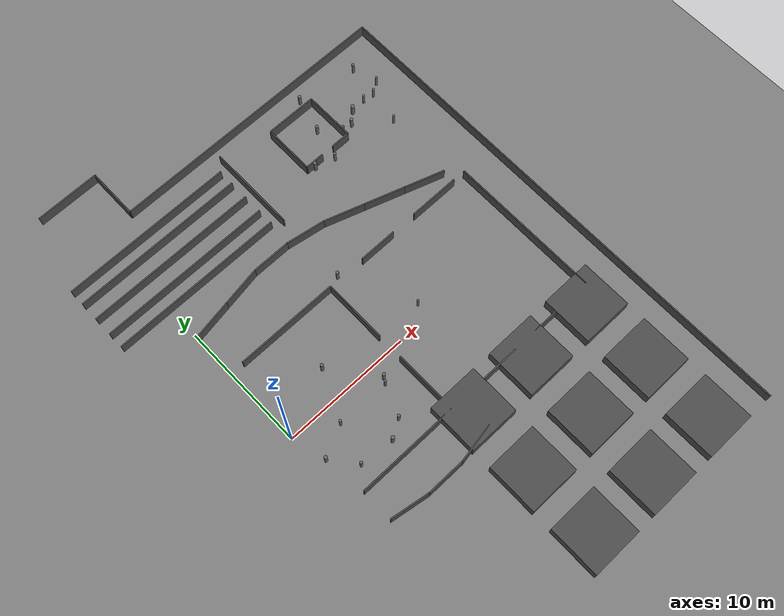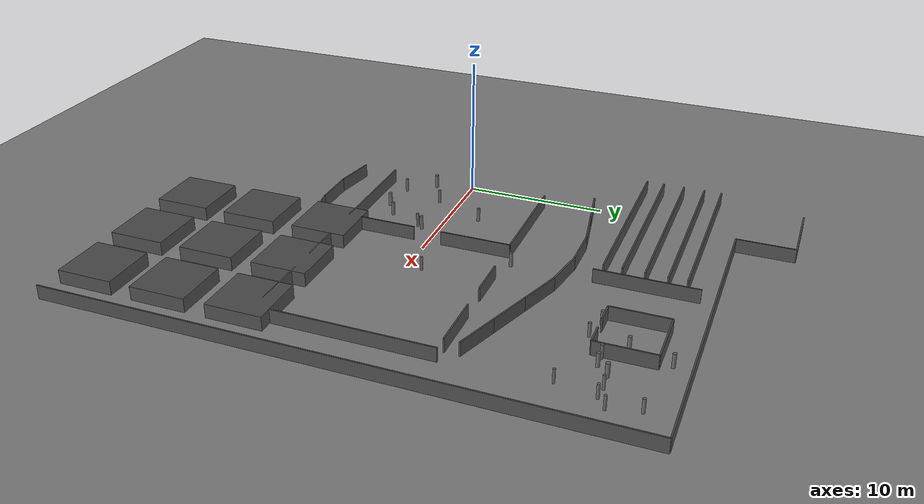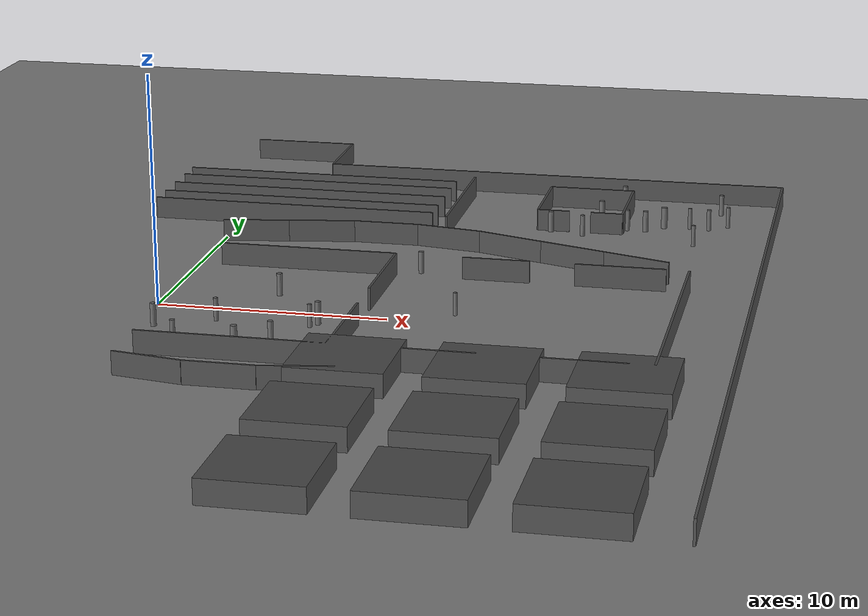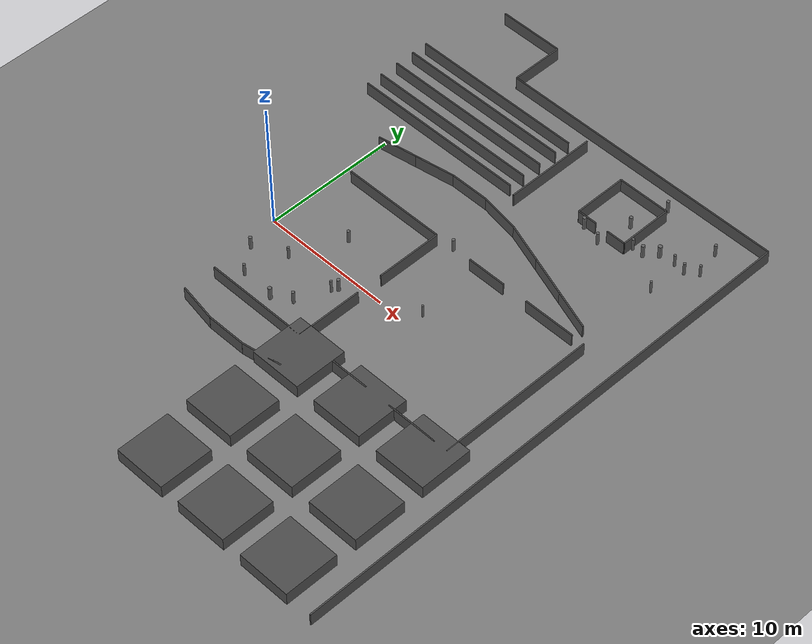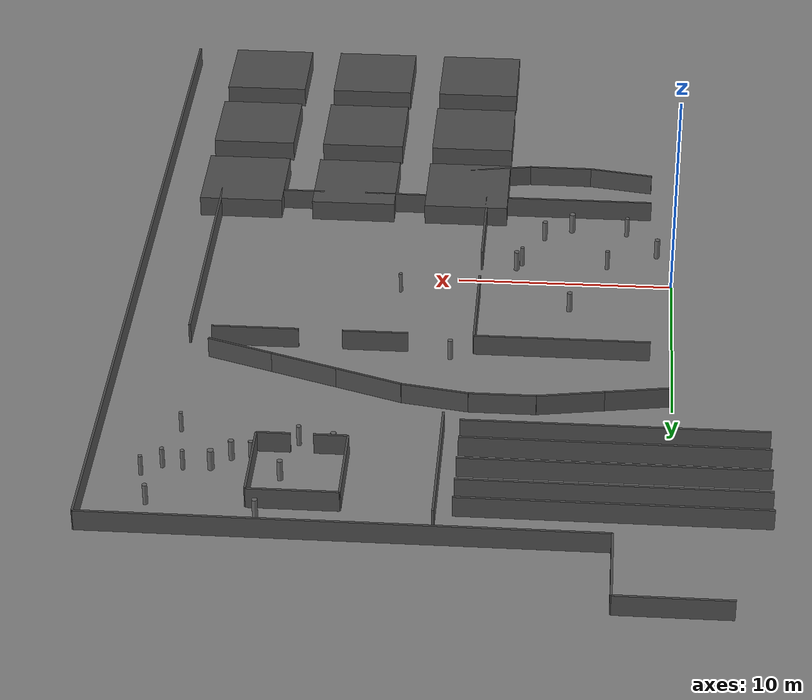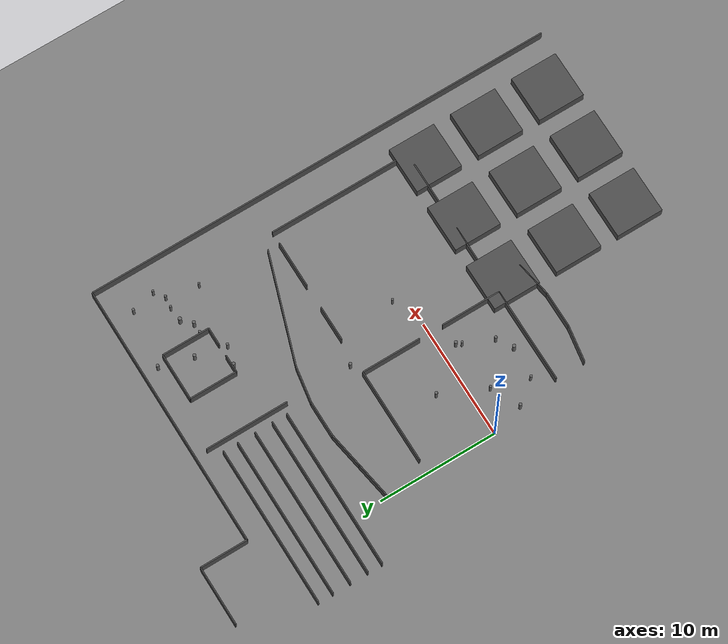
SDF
<sdf version="1.9">
 <world name="maze_large">
  <model name="ground">
   <static>true</static>
   <link name="link">
    <collision name="collision">
     <geometry><plane><normal>0 0 1</normal><size>75 60</size></plane></geometry>
    </collision>
    <visual name="visual">
     <geometry><plane><normal>0 0 1</normal><size>75 60</size></plane></geometry>
     <material><ambient>0.5 0.5 0.5 1</ambient><diffuse>0.5 0.5 0.5 1</diffuse></material>
    </visual>
   </link>
  </model>
  <model name="border_top_r">
   <static>true</static>
   <pose>13.75 20.0 0.5 0 0 0.0</pose>
   <link name="wall">
    <collision name="collision"><geometry><box><size>22.5 0.1 1.0</size></box></geometry></collision>
    <visual name="visual">
     <geometry><box><size>22.5 0.1 1.0</size></box></geometry>
     <material><ambient>0.3 0.3 0.3 1</ambient><diffuse>0.3 0.3 0.3 1</diffuse></material>
    </visual>
   </link>
  </model>
  <model name="border_right">
   <static>true</static>
   <pose>25.0 0.0 0.5 0 0 0.0</pose>
   <link name="wall">
    <collision name="collision"><geometry><box><size>0.1 40.0 1.0</size></box></geometry></collision>
    <visual name="visual">
     <geometry><box><size>0.1 40.0 1.0</size></box></geometry>
     <material><ambient>0.3 0.3 0.3 1</ambient><diffuse>0.3 0.3 0.3 1</diffuse></material>
    </visual>
   </link>
  </model>
  <model name="alcove_right">
   <static>true</static>
   <pose>2.5 22.0 0.5 0 0 0.0</pose>
   <link name="wall">
    <collision name="collision"><geometry><box><size>0.1 4.0 1.0</size></box></geometry></collision>
    <visual name="visual">
     <geometry><box><size>0.1 4.0 1.0</size></box></geometry>
     <material><ambient>0.3 0.3 0.3 1</ambient><diffuse>0.3 0.3 0.3 1</diffuse></material>
    </visual>
   </link>
  </model>
  <model name="alcove_back">
   <static>true</static>
   <pose>0.0 24.0 0.5 0 0 0.0</pose>
   <link name="wall">
    <collision name="collision"><geometry><box><size>5.0 0.1 1.0</size></box></geometry></collision>
    <visual name="visual">
     <geometry><box><size>5.0 0.1 1.0</size></box></geometry>
     <material><ambient>0.3 0.3 0.3 1</ambient><diffuse>0.3 0.3 0.3 1</diffuse></material>
    </visual>
   </link>
  </model>
  <model name="plaza_top_r">
   <static>true</static>
   <pose>5.0 6.0 0.5 0 0 0.0</pose>
   <link name="wall">
    <collision name="collision"><geometry><box><size>8.0 0.1 1.0</size></box></geometry></collision>
    <visual name="visual">
     <geometry><box><size>8.0 0.1 1.0</size></box></geometry>
     <material><ambient>0.3 0.3 0.3 1</ambient><diffuse>0.3 0.3 0.3 1</diffuse></material>
    </visual>
   </link>
  </model>
  <model name="plaza_bot_r">
   <static>true</static>
   <pose>5.0 -6.0 0.5 0 0 0.0</pose>
   <link name="wall">
    <collision name="collision"><geometry><box><size>8.0 0.1 1.0</size></box></geometry></collision>
    <visual name="visual">
     <geometry><box><size>8.0 0.1 1.0</size></box></geometry>
     <material><ambient>0.3 0.3 0.3 1</ambient><diffuse>0.3 0.3 0.3 1</diffuse></material>
    </visual>
   </link>
  </model>
  <model name="plaza_right_t">
   <static>true</static>
   <pose>9.0 3.5 0.5 0 0 0.0</pose>
   <link name="wall">
    <collision name="collision"><geometry><box><size>0.1 5.0 1.0</size></box></geometry></collision>
    <visual name="visual">
     <geometry><box><size>0.1 5.0 1.0</size></box></geometry>
     <material><ambient>0.3 0.3 0.3 1</ambient><diffuse>0.3 0.3 0.3 1</diffuse></material>
    </visual>
   </link>
  </model>
  <model name="plaza_right_b">
   <static>true</static>
   <pose>9.0 -3.5 0.5 0 0 0.0</pose>
   <link name="wall">
    <collision name="collision"><geometry><box><size>0.1 5.0 1.0</size></box></geometry></collision>
    <visual name="visual">
     <geometry><box><size>0.1 5.0 1.0</size></box></geometry>
     <material><ambient>0.3 0.3 0.3 1</ambient><diffuse>0.3 0.3 0.3 1</diffuse></material>
    </visual>
   </link>
  </model>
  <model name="plaza_p_0">
   <static>true</static>
   <pose>2.15 -4.5 0.5 0 0 0</pose>
   <link name="p">
    <collision name="c">
     <geometry><cylinder><radius>0.105</radius><length>1.0</length></cylinder></geometry>
    </collision>
    <visual name="v">
     <geometry><cylinder><radius>0.105</radius><length>1.0</length></cylinder></geometry>
     <material><ambient>0.4 0.4 0.4 1</ambient><diffuse>0.4 0.4 0.4 1</diffuse></material>
    </visual>
   </link>
  </model>
  <model name="plaza_p_2">
   <static>true</static>
   <pose>6.1 -3.9 0.5 0 0 0</pose>
   <link name="p">
    <collision name="c">
     <geometry><cylinder><radius>0.115</radius><length>1.0</length></cylinder></geometry>
    </collision>
    <visual name="v">
     <geometry><cylinder><radius>0.115</radius><length>1.0</length></cylinder></geometry>
     <material><ambient>0.4 0.4 0.4 1</ambient><diffuse>0.4 0.4 0.4 1</diffuse></material>
    </visual>
   </link>
  </model>
  <model name="plaza_p_5">
   <static>true</static>
   <pose>0.7 -2.65 0.5 0 0 0</pose>
   <link name="p">
    <collision name="c">
     <geometry><cylinder><radius>0.125</radius><length>1.0</length></cylinder></geometry>
    </collision>
    <visual name="v">
     <geometry><cylinder><radius>0.125</radius><length>1.0</length></cylinder></geometry>
     <material><ambient>0.4 0.4 0.4 1</ambient><diffuse>0.4 0.4 0.4 1</diffuse></material>
    </visual>
   </link>
  </model>
  <model name="plaza_p_6">
   <static>true</static>
   <pose>4.8 -4.7 0.5 0 0 0</pose>
   <link name="p">
    <collision name="c">
     <geometry><cylinder><radius>0.1375</radius><length>1.0</length></cylinder></geometry>
    </collision>
    <visual name="v">
     <geometry><cylinder><radius>0.1375</radius><length>1.0</length></cylinder></geometry>
     <material><ambient>0.4 0.4 0.4 1</ambient><diffuse>0.4 0.4 0.4 1</diffuse></material>
    </visual>
   </link>
  </model>
  <model name="plaza_p_7">
   <static>true</static>
   <pose>3.05 -1.5 0.5 0 0 0</pose>
   <link name="p">
    <collision name="c">
     <geometry><cylinder><radius>0.0975</radius><length>1.0</length></cylinder></geometry>
    </collision>
    <visual name="v">
     <geometry><cylinder><radius>0.0975</radius><length>1.0</length></cylinder></geometry>
     <material><ambient>0.4 0.4 0.4 1</ambient><diffuse>0.4 0.4 0.4 1</diffuse></material>
    </visual>
   </link>
  </model>
  <model name="plaza_p_8">
   <static>true</static>
   <pose>7.1 -1.55 0.5 0 0 0</pose>
   <link name="p">
    <collision name="c">
     <geometry><cylinder><radius>0.0925</radius><length>1.0</length></cylinder></geometry>
    </collision>
    <visual name="v">
     <geometry><cylinder><radius>0.0925</radius><length>1.0</length></cylinder></geometry>
     <material><ambient>0.4 0.4 0.4 1</ambient><diffuse>0.4 0.4 0.4 1</diffuse></material>
    </visual>
   </link>
  </model>
  <model name="plaza_p_10">
   <static>true</static>
   <pose>4.75 2.2 0.5 0 0 0</pose>
   <link name="p">
    <collision name="c">
     <geometry><cylinder><radius>0.12</radius><length>1.0</length></cylinder></geometry>
    </collision>
    <visual name="v">
     <geometry><cylinder><radius>0.12</radius><length>1.0</length></cylinder></geometry>
     <material><ambient>0.4 0.4 0.4 1</ambient><diffuse>0.4 0.4 0.4 1</diffuse></material>
    </visual>
   </link>
  </model>
  <model name="plaza_p_11">
   <static>true</static>
   <pose>7.35 -1.15 0.5 0 0 0</pose>
   <link name="p">
    <collision name="c">
     <geometry><cylinder><radius>0.1225</radius><length>1.0</length></cylinder></geometry>
    </collision>
    <visual name="v">
     <geometry><cylinder><radius>0.1225</radius><length>1.0</length></cylinder></geometry>
     <material><ambient>0.4 0.4 0.4 1</ambient><diffuse>0.4 0.4 0.4 1</diffuse></material>
    </visual>
   </link>
  </model>
  <model name="corr_r_out">
   <static>true</static>
   <pose>22.0 0.0 0.5 0 0 0.0</pose>
   <link name="wall">
    <collision name="collision"><geometry><box><size>0.1 12.0 1.0</size></box></geometry></collision>
    <visual name="visual">
     <geometry><box><size>0.1 12.0 1.0</size></box></geometry>
     <material><ambient>0.3 0.3 0.3 1</ambient><diffuse>0.3 0.3 0.3 1</diffuse></material>
    </visual>
   </link>
  </model>
  <model name="corr_r_top_l">
   <static>true</static>
   <pose>13.5 6.0 0.5 0 0 0.0</pose>
   <link name="wall">
    <collision name="collision"><geometry><box><size>3.0 0.1 1.0</size></box></geometry></collision>
    <visual name="visual">
     <geometry><box><size>3.0 0.1 1.0</size></box></geometry>
     <material><ambient>0.3 0.3 0.3 1</ambient><diffuse>0.3 0.3 0.3 1</diffuse></material>
    </visual>
   </link>
  </model>
  <model name="corr_r_top_r">
   <static>true</static>
   <pose>19.0 6.0 0.5 0 0 0.0</pose>
   <link name="wall">
    <collision name="collision"><geometry><box><size>4.0 0.1 1.0</size></box></geometry></collision>
    <visual name="visual">
     <geometry><box><size>4.0 0.1 1.0</size></box></geometry>
     <material><ambient>0.3 0.3 0.3 1</ambient><diffuse>0.3 0.3 0.3 1</diffuse></material>
    </visual>
   </link>
  </model>
  <model name="corr_r_bot_l">
   <static>true</static>
   <pose>13.5 -6.0 0.5 0 0 0.0</pose>
   <link name="wall">
    <collision name="collision"><geometry><box><size>3.0 0.1 1.0</size></box></geometry></collision>
    <visual name="visual">
     <geometry><box><size>3.0 0.1 1.0</size></box></geometry>
     <material><ambient>0.3 0.3 0.3 1</ambient><diffuse>0.3 0.3 0.3 1</diffuse></material>
    </visual>
   </link>
  </model>
  <model name="corr_r_bot_r">
   <static>true</static>
   <pose>19.0 -6.0 0.5 0 0 0.0</pose>
   <link name="wall">
    <collision name="collision"><geometry><box><size>4.0 0.1 1.0</size></box></geometry></collision>
    <visual name="visual">
     <geometry><box><size>4.0 0.1 1.0</size></box></geometry>
     <material><ambient>0.3 0.3 0.3 1</ambient><diffuse>0.3 0.3 0.3 1</diffuse></material>
    </visual>
   </link>
  </model>
  <model name="pf_right_0">
   <static>true</static>
   <pose>16.2 13.45 0.5 0 0 0</pose>
   <link name="p">
    <collision name="c">
     <geometry><cylinder><radius>0.1075</radius><length>1.0</length></cylinder></geometry>
    </collision>
    <visual name="v">
     <geometry><cylinder><radius>0.1075</radius><length>1.0</length></cylinder></geometry>
     <material><ambient>0.4 0.4 0.4 1</ambient><diffuse>0.4 0.4 0.4 1</diffuse></material>
    </visual>
   </link>
  </model>
  <model name="pf_right_1">
   <static>true</static>
   <pose>22.25 18.05 0.5 0 0 0</pose>
   <link name="p">
    <collision name="c">
     <geometry><cylinder><radius>0.1075</radius><length>1.0</length></cylinder></geometry>
    </collision>
    <visual name="v">
     <geometry><cylinder><radius>0.1075</radius><length>1.0</length></cylinder></geometry>
     <material><ambient>0.4 0.4 0.4 1</ambient><diffuse>0.4 0.4 0.4 1</diffuse></material>
    </visual>
   </link>
  </model>
  <model name="pf_right_2">
   <static>true</static>
   <pose>19.8 15.45 0.5 0 0 0</pose>
   <link name="p">
    <collision name="c">
     <geometry><cylinder><radius>0.145</radius><length>1.0</length></cylinder></geometry>
    </collision>
    <visual name="v">
     <geometry><cylinder><radius>0.145</radius><length>1.0</length></cylinder></geometry>
     <material><ambient>0.4 0.4 0.4 1</ambient><diffuse>0.4 0.4 0.4 1</diffuse></material>
    </visual>
   </link>
  </model>
  <model name="pf_right_3">
   <static>true</static>
   <pose>18.15 14.7 0.5 0 0 0</pose>
   <link name="p">
    <collision name="c">
     <geometry><cylinder><radius>0.1025</radius><length>1.0</length></cylinder></geometry>
    </collision>
    <visual name="v">
     <geometry><cylinder><radius>0.1025</radius><length>1.0</length></cylinder></geometry>
     <material><ambient>0.4 0.4 0.4 1</ambient><diffuse>0.4 0.4 0.4 1</diffuse></material>
    </visual>
   </link>
  </model>
  <model name="pf_right_4">
   <static>true</static>
   <pose>19.0 14.7 0.5 0 0 0</pose>
   <link name="p">
    <collision name="c">
     <geometry><cylinder><radius>0.125</radius><length>1.0</length></cylinder></geometry>
    </collision>
    <visual name="v">
     <geometry><cylinder><radius>0.125</radius><length>1.0</length></cylinder></geometry>
     <material><ambient>0.4 0.4 0.4 1</ambient><diffuse>0.4 0.4 0.4 1</diffuse></material>
    </visual>
   </link>
  </model>
  <model name="pf_right_5">
   <static>true</static>
   <pose>21.9 15.45 0.5 0 0 0</pose>
   <link name="p">
    <collision name="c">
     <geometry><cylinder><radius>0.1</radius><length>1.0</length></cylinder></geometry>
    </collision>
    <visual name="v">
     <geometry><cylinder><radius>0.1</radius><length>1.0</length></cylinder></geometry>
     <material><ambient>0.4 0.4 0.4 1</ambient><diffuse>0.4 0.4 0.4 1</diffuse></material>
    </visual>
   </link>
  </model>
  <model name="pf_right_6">
   <static>true</static>
   <pose>22.75 16.05 0.5 0 0 0</pose>
   <link name="p">
    <collision name="c">
     <geometry><cylinder><radius>0.0925</radius><length>1.0</length></cylinder></geometry>
    </collision>
    <visual name="v">
     <geometry><cylinder><radius>0.0925</radius><length>1.0</length></cylinder></geometry>
     <material><ambient>0.4 0.4 0.4 1</ambient><diffuse>0.4 0.4 0.4 1</diffuse></material>
    </visual>
   </link>
  </model>
  <model name="pf_right_7">
   <static>true</static>
   <pose>14.65 13.85 0.5 0 0 0</pose>
   <link name="p">
    <collision name="c">
     <geometry><cylinder><radius>0.1275</radius><length>1.0</length></cylinder></geometry>
    </collision>
    <visual name="v">
     <geometry><cylinder><radius>0.1275</radius><length>1.0</length></cylinder></geometry>
     <material><ambient>0.4 0.4 0.4 1</ambient><diffuse>0.4 0.4 0.4 1</diffuse></material>
    </visual>
   </link>
  </model>
  <model name="pf_right_8">
   <static>true</static>
   <pose>21.0 15.55 0.5 0 0 0</pose>
   <link name="p">
    <collision name="c">
     <geometry><cylinder><radius>0.0925</radius><length>1.0</length></cylinder></geometry>
    </collision>
    <visual name="v">
     <geometry><cylinder><radius>0.0925</radius><length>1.0</length></cylinder></geometry>
     <material><ambient>0.4 0.4 0.4 1</ambient><diffuse>0.4 0.4 0.4 1</diffuse></material>
    </visual>
   </link>
  </model>
  <model name="pf_right_9">
   <static>true</static>
   <pose>17.5 18.75 0.5 0 0 0</pose>
   <link name="p">
    <collision name="c">
     <geometry><cylinder><radius>0.12</radius><length>1.0</length></cylinder></geometry>
    </collision>
    <visual name="v">
     <geometry><cylinder><radius>0.12</radius><length>1.0</length></cylinder></geometry>
     <material><ambient>0.4 0.4 0.4 1</ambient><diffuse>0.4 0.4 0.4 1</diffuse></material>
    </visual>
   </link>
  </model>
  <model name="room_b_bot_l">
   <static>true</static>
   <pose>14.75 14.0 0.5 0 0 0.0</pose>
   <link name="wall">
    <collision name="collision"><geometry><box><size>1.5 0.1 1.0</size></box></geometry></collision>
    <visual name="visual">
     <geometry><box><size>1.5 0.1 1.0</size></box></geometry>
     <material><ambient>0.3 0.3 0.3 1</ambient><diffuse>0.3 0.3 0.3 1</diffuse></material>
    </visual>
   </link>
  </model>
  <model name="room_b_bot_r">
   <static>true</static>
   <pose>17.25 14.0 0.5 0 0 0.0</pose>
   <link name="wall">
    <collision name="collision"><geometry><box><size>1.5 0.1 1.0</size></box></geometry></collision>
    <visual name="visual">
     <geometry><box><size>1.5 0.1 1.0</size></box></geometry>
     <material><ambient>0.3 0.3 0.3 1</ambient><diffuse>0.3 0.3 0.3 1</diffuse></material>
    </visual>
   </link>
  </model>
  <model name="room_b_top">
   <static>true</static>
   <pose>16.0 18.0 0.5 0 0 0.0</pose>
   <link name="wall">
    <collision name="collision"><geometry><box><size>4.0 0.1 1.0</size></box></geometry></collision>
    <visual name="visual">
     <geometry><box><size>4.0 0.1 1.0</size></box></geometry>
     <material><ambient>0.3 0.3 0.3 1</ambient><diffuse>0.3 0.3 0.3 1</diffuse></material>
    </visual>
   </link>
  </model>
  <model name="room_b_left">
   <static>true</static>
   <pose>14.0 16.0 0.5 0 0 0.0</pose>
   <link name="wall">
    <collision name="collision"><geometry><box><size>0.1 4.0 1.0</size></box></geometry></collision>
    <visual name="visual">
     <geometry><box><size>0.1 4.0 1.0</size></box></geometry>
     <material><ambient>0.3 0.3 0.3 1</ambient><diffuse>0.3 0.3 0.3 1</diffuse></material>
    </visual>
   </link>
  </model>
  <model name="room_b_right">
   <static>true</static>
   <pose>18.0 16.0 0.5 0 0 0.0</pose>
   <link name="wall">
    <collision name="collision"><geometry><box><size>0.1 4.0 1.0</size></box></geometry></collision>
    <visual name="visual">
     <geometry><box><size>0.1 4.0 1.0</size></box></geometry>
     <material><ambient>0.3 0.3 0.3 1</ambient><diffuse>0.3 0.3 0.3 1</diffuse></material>
    </visual>
   </link>
  </model>
  <model name="room_b_pillar">
   <static>true</static>
   <pose>16.75 16.0 0.5 0 0 0</pose>
   <link name="p">
    <collision name="c">
     <geometry><cylinder><radius>0.125</radius><length>1.0</length></cylinder></geometry>
    </collision>
    <visual name="v">
     <geometry><cylinder><radius>0.125</radius><length>1.0</length></cylinder></geometry>
     <material><ambient>0.4 0.4 0.4 1</ambient><diffuse>0.4 0.4 0.4 1</diffuse></material>
    </visual>
   </link>
  </model>
  <model name="warehouse_right">
   <static>true</static>
   <pose>10.0 15.5 0.5 0 0 0.0</pose>
   <link name="wall">
    <collision name="collision"><geometry><box><size>0.1 7.0 1.0</size></box></geometry></collision>
    <visual name="visual">
     <geometry><box><size>0.1 7.0 1.0</size></box></geometry>
     <material><ambient>0.3 0.3 0.3 1</ambient><diffuse>0.3 0.3 0.3 1</diffuse></material>
    </visual>
   </link>
  </model>
  <model name="shelf_0">
   <static>true</static>
   <pose>2.5 12.5 0.5 0 0 0.0</pose>
   <link name="wall">
    <collision name="collision"><geometry><box><size>13.5 0.1 1.0</size></box></geometry></collision>
    <visual name="visual">
     <geometry><box><size>13.5 0.1 1.0</size></box></geometry>
     <material><ambient>0.3 0.3 0.3 1</ambient><diffuse>0.3 0.3 0.3 1</diffuse></material>
    </visual>
   </link>
  </model>
  <model name="shelf_1">
   <static>true</static>
   <pose>2.5 13.75 0.5 0 0 0.0</pose>
   <link name="wall">
    <collision name="collision"><geometry><box><size>13.5 0.1 1.0</size></box></geometry></collision>
    <visual name="visual">
     <geometry><box><size>13.5 0.1 1.0</size></box></geometry>
     <material><ambient>0.3 0.3 0.3 1</ambient><diffuse>0.3 0.3 0.3 1</diffuse></material>
    </visual>
   </link>
  </model>
  <model name="shelf_2">
   <static>true</static>
   <pose>2.5 15.25 0.5 0 0 0.0</pose>
   <link name="wall">
    <collision name="collision"><geometry><box><size>13.5 0.1 1.0</size></box></geometry></collision>
    <visual name="visual">
     <geometry><box><size>13.5 0.1 1.0</size></box></geometry>
     <material><ambient>0.3 0.3 0.3 1</ambient><diffuse>0.3 0.3 0.3 1</diffuse></material>
    </visual>
   </link>
  </model>
  <model name="shelf_3">
   <static>true</static>
   <pose>2.5 16.75 0.5 0 0 0.0</pose>
   <link name="wall">
    <collision name="collision"><geometry><box><size>13.5 0.1 1.0</size></box></geometry></collision>
    <visual name="visual">
     <geometry><box><size>13.5 0.1 1.0</size></box></geometry>
     <material><ambient>0.3 0.3 0.3 1</ambient><diffuse>0.3 0.3 0.3 1</diffuse></material>
    </visual>
   </link>
  </model>
  <model name="shelf_4">
   <static>true</static>
   <pose>2.5 18.0 0.5 0 0 0.0</pose>
   <link name="wall">
    <collision name="collision"><geometry><box><size>13.5 0.1 1.0</size></box></geometry></collision>
    <visual name="visual">
     <geometry><box><size>13.5 0.1 1.0</size></box></geometry>
     <material><ambient>0.3 0.3 0.3 1</ambient><diffuse>0.3 0.3 0.3 1</diffuse></material>
    </visual>
   </link>
  </model>
  <model name="grid_r_0_0">
   <static>true</static>
   <pose>10.0 -18.0 0.5 0 0 0.0</pose>
   <link name="wall">
    <collision name="collision"><geometry><box><size>4.0 4.0 1.0</size></box></geometry></collision>
    <visual name="visual">
     <geometry><box><size>4.0 4.0 1.0</size></box></geometry>
     <material><ambient>0.3 0.3 0.3 1</ambient><diffuse>0.3 0.3 0.3 1</diffuse></material>
    </visual>
   </link>
  </model>
  <model name="grid_r_0_1">
   <static>true</static>
   <pose>15.5 -18.0 0.5 0 0 0.0</pose>
   <link name="wall">
    <collision name="collision"><geometry><box><size>4.0 4.0 1.0</size></box></geometry></collision>
    <visual name="visual">
     <geometry><box><size>4.0 4.0 1.0</size></box></geometry>
     <material><ambient>0.3 0.3 0.3 1</ambient><diffuse>0.3 0.3 0.3 1</diffuse></material>
    </visual>
   </link>
  </model>
  <model name="grid_r_0_2">
   <static>true</static>
   <pose>21.0 -18.0 0.5 0 0 0.0</pose>
   <link name="wall">
    <collision name="collision"><geometry><box><size>4.0 4.0 1.0</size></box></geometry></collision>
    <visual name="visual">
     <geometry><box><size>4.0 4.0 1.0</size></box></geometry>
     <material><ambient>0.3 0.3 0.3 1</ambient><diffuse>0.3 0.3 0.3 1</diffuse></material>
    </visual>
   </link>
  </model>
  <model name="grid_r_1_0">
   <static>true</static>
   <pose>10.0 -12.5 0.5 0 0 0.0</pose>
   <link name="wall">
    <collision name="collision"><geometry><box><size>4.0 4.0 1.0</size></box></geometry></collision>
    <visual name="visual">
     <geometry><box><size>4.0 4.0 1.0</size></box></geometry>
     <material><ambient>0.3 0.3 0.3 1</ambient><diffuse>0.3 0.3 0.3 1</diffuse></material>
    </visual>
   </link>
  </model>
  <model name="grid_r_1_1">
   <static>true</static>
   <pose>15.5 -12.5 0.5 0 0 0.0</pose>
   <link name="wall">
    <collision name="collision"><geometry><box><size>4.0 4.0 1.0</size></box></geometry></collision>
    <visual name="visual">
     <geometry><box><size>4.0 4.0 1.0</size></box></geometry>
     <material><ambient>0.3 0.3 0.3 1</ambient><diffuse>0.3 0.3 0.3 1</diffuse></material>
    </visual>
   </link>
  </model>
  <model name="grid_r_1_2">
   <static>true</static>
   <pose>21.0 -12.5 0.5 0 0 0.0</pose>
   <link name="wall">
    <collision name="collision"><geometry><box><size>4.0 4.0 1.0</size></box></geometry></collision>
    <visual name="visual">
     <geometry><box><size>4.0 4.0 1.0</size></box></geometry>
     <material><ambient>0.3 0.3 0.3 1</ambient><diffuse>0.3 0.3 0.3 1</diffuse></material>
    </visual>
   </link>
  </model>
  <model name="grid_r_2_0">
   <static>true</static>
   <pose>10.0 -7.0 0.5 0 0 0.0</pose>
   <link name="wall">
    <collision name="collision"><geometry><box><size>4.0 4.0 1.0</size></box></geometry></collision>
    <visual name="visual">
     <geometry><box><size>4.0 4.0 1.0</size></box></geometry>
     <material><ambient>0.3 0.3 0.3 1</ambient><diffuse>0.3 0.3 0.3 1</diffuse></material>
    </visual>
   </link>
  </model>
  <model name="grid_r_2_1">
   <static>true</static>
   <pose>15.5 -7.0 0.5 0 0 0.0</pose>
   <link name="wall">
    <collision name="collision"><geometry><box><size>4.0 4.0 1.0</size></box></geometry></collision>
    <visual name="visual">
     <geometry><box><size>4.0 4.0 1.0</size></box></geometry>
     <material><ambient>0.3 0.3 0.3 1</ambient><diffuse>0.3 0.3 0.3 1</diffuse></material>
    </visual>
   </link>
  </model>
  <model name="grid_r_2_2">
   <static>true</static>
   <pose>21.0 -7.0 0.5 0 0 0.0</pose>
   <link name="wall">
    <collision name="collision"><geometry><box><size>4.0 4.0 1.0</size></box></geometry></collision>
    <visual name="visual">
     <geometry><box><size>4.0 4.0 1.0</size></box></geometry>
     <material><ambient>0.3 0.3 0.3 1</ambient><diffuse>0.3 0.3 0.3 1</diffuse></material>
    </visual>
   </link>
  </model>
  <model name="curve_ur_0">
   <static>true</static>
   <pose>1.5 9.75 0.5 0 0 0.1651486774146268</pose>
   <link name="wall">
    <collision name="collision">
     <geometry><box><size>3.0413812651491097 0.1 1.0</size></box></geometry>
    </collision>
    <visual name="visual">
     <geometry><box><size>3.0413812651491097 0.1 1.0</size></box></geometry>
     <material><ambient>0.3 0.3 0.3 1</ambient><diffuse>0.3 0.3 0.3 1</diffuse></material>
    </visual>
   </link>
  </model>
  <model name="curve_ur_1">
   <static>true</static>
   <pose>4.5 10.25 0.5 0 0 0.1651486774146268</pose>
   <link name="wall">
    <collision name="collision">
     <geometry><box><size>3.0413812651491097 0.1 1.0</size></box></geometry>
    </collision>
    <visual name="visual">
     <geometry><box><size>3.0413812651491097 0.1 1.0</size></box></geometry>
     <material><ambient>0.3 0.3 0.3 1</ambient><diffuse>0.3 0.3 0.3 1</diffuse></material>
    </visual>
   </link>
  </model>
  <model name="curve_ur_2">
   <static>true</static>
   <pose>7.5 10.5 0.5 0 0 0.0</pose>
   <link name="wall">
    <collision name="collision"><geometry><box><size>3.0 0.1 1.0</size></box></geometry></collision>
    <visual name="visual">
     <geometry><box><size>3.0 0.1 1.0</size></box></geometry>
     <material><ambient>0.3 0.3 0.3 1</ambient><diffuse>0.3 0.3 0.3 1</diffuse></material>
    </visual>
   </link>
  </model>
  <model name="curve_ur_3">
   <static>true</static>
   <pose>10.5 10.25 0.5 0 0 -0.1651486774146268</pose>
   <link name="wall">
    <collision name="collision">
     <geometry><box><size>3.0413812651491097 0.1 1.0</size></box></geometry>
    </collision>
    <visual name="visual">
     <geometry><box><size>3.0413812651491097 0.1 1.0</size></box></geometry>
     <material><ambient>0.3 0.3 0.3 1</ambient><diffuse>0.3 0.3 0.3 1</diffuse></material>
    </visual>
   </link>
  </model>
  <model name="curve_ur_4">
   <static>true</static>
   <pose>13.5 9.5 0.5 0 0 -0.3217505543966422</pose>
   <link name="wall">
    <collision name="collision">
     <geometry><box><size>3.1622776601683795 0.1 1.0</size></box></geometry>
    </collision>
    <visual name="visual">
     <geometry><box><size>3.1622776601683795 0.1 1.0</size></box></geometry>
     <material><ambient>0.3 0.3 0.3 1</ambient><diffuse>0.3 0.3 0.3 1</diffuse></material>
    </visual>
   </link>
  </model>
  <model name="curve_ur_5">
   <static>true</static>
   <pose>16.5 8.5 0.5 0 0 -0.3217505543966422</pose>
   <link name="wall">
    <collision name="collision">
     <geometry><box><size>3.1622776601683795 0.1 1.0</size></box></geometry>
    </collision>
    <visual name="visual">
     <geometry><box><size>3.1622776601683795 0.1 1.0</size></box></geometry>
     <material><ambient>0.3 0.3 0.3 1</ambient><diffuse>0.3 0.3 0.3 1</diffuse></material>
    </visual>
   </link>
  </model>
  <model name="curve_ur_6">
   <static>true</static>
   <pose>19.5 7.5 0.5 0 0 -0.3217505543966422</pose>
   <link name="wall">
    <collision name="collision">
     <geometry><box><size>3.1622776601683795 0.1 1.0</size></box></geometry>
    </collision>
    <visual name="visual">
     <geometry><box><size>3.1622776601683795 0.1 1.0</size></box></geometry>
     <material><ambient>0.3 0.3 0.3 1</ambient><diffuse>0.3 0.3 0.3 1</diffuse></material>
    </visual>
   </link>
  </model>
  <model name="curve_lo_4">
   <static>true</static>
   <pose>2.5 -8.75 0.5 0 0 -0.1651486774146268</pose>
   <link name="wall">
    <collision name="collision">
     <geometry><box><size>3.0413812651491097 0.1 1.0</size></box></geometry>
    </collision>
    <visual name="visual">
     <geometry><box><size>3.0413812651491097 0.1 1.0</size></box></geometry>
     <material><ambient>0.3 0.3 0.3 1</ambient><diffuse>0.3 0.3 0.3 1</diffuse></material>
    </visual>
   </link>
  </model>
  <model name="curve_lo_5">
   <static>true</static>
   <pose>5.5 -9.0 0.5 0 0 0.0</pose>
   <link name="wall">
    <collision name="collision"><geometry><box><size>3.0 0.1 1.0</size></box></geometry></collision>
    <visual name="visual">
     <geometry><box><size>3.0 0.1 1.0</size></box></geometry>
     <material><ambient>0.3 0.3 0.3 1</ambient><diffuse>0.3 0.3 0.3 1</diffuse></material>
    </visual>
   </link>
  </model>
  <model name="curve_lo_6">
   <static>true</static>
   <pose>8.5 -8.75 0.5 0 0 0.1651486774146268</pose>
   <link name="wall">
    <collision name="collision">
     <geometry><box><size>3.0413812651491097 0.1 1.0</size></box></geometry>
    </collision>
    <visual name="visual">
     <geometry><box><size>3.0413812651491097 0.1 1.0</size></box></geometry>
     <material><ambient>0.3 0.3 0.3 1</ambient><diffuse>0.3 0.3 0.3 1</diffuse></material>
    </visual>
   </link>
  </model>
  <model name="extra_0">
   <static>true</static>
   <pose>21.45 12.8 0.5 0 0 0</pose>
   <link name="p">
    <collision name="c">
     <geometry><cylinder><radius>0.0875</radius><length>1.0</length></cylinder></geometry>
    </collision>
    <visual name="v">
     <geometry><cylinder><radius>0.0875</radius><length>1.0</length></cylinder></geometry>
     <material><ambient>0.4 0.4 0.4 1</ambient><diffuse>0.4 0.4 0.4 1</diffuse></material>
    </visual>
   </link>
  </model>
  <model name="extra_1">
   <static>true</static>
   <pose>10.05 6.45 0.5 0 0 0</pose>
   <link name="p">
    <collision name="c">
     <geometry><cylinder><radius>0.12</radius><length>1.0</length></cylinder></geometry>
    </collision>
    <visual name="v">
     <geometry><cylinder><radius>0.12</radius><length>1.0</length></cylinder></geometry>
     <material><ambient>0.4 0.4 0.4 1</ambient><diffuse>0.4 0.4 0.4 1</diffuse></material>
    </visual>
   </link>
  </model>
  <model name="extra_6">
   <static>true</static>
   <pose>12.7 1.1 0.5 0 0 0</pose>
   <link name="p">
    <collision name="c">
     <geometry><cylinder><radius>0.0875</radius><length>1.0</length></cylinder></geometry>
    </collision>
    <visual name="v">
     <geometry><cylinder><radius>0.0875</radius><length>1.0</length></cylinder></geometry>
     <material><ambient>0.4 0.4 0.4 1</ambient><diffuse>0.4 0.4 0.4 1</diffuse></material>
    </visual>
   </link>
  </model>
 </world>
</sdf>
